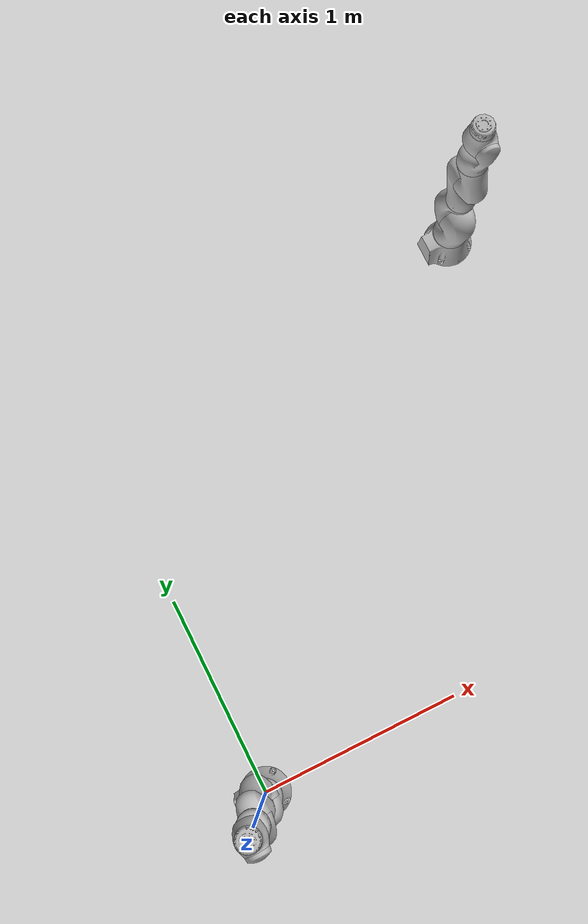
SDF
<sdf version='1.6'>
<world name='default'>
  <model name='lbr_iiwa'>
    <link name='lbr_iiwa_link_0'>
      <pose frame=''>0 0 0 0 -0 0</pose>
      <inertial>
        <pose frame=''>-0.1 0 0.07 0 -0 0</pose>
        <mass>0</mass>
        <inertia>
          <ixx>0.05</ixx>
          <ixy>0</ixy>
          <ixz>0</ixz>
          <iyy>0.06</iyy>
          <iyz>0</iyz>
          <izz>0.03</izz>
        </inertia>
      </inertial>
      <collision name='lbr_iiwa_link_0_collision'>
        <pose frame=''>0 0 0 0 -0 0</pose>
        <geometry>
          <mesh>
            <scale>1 1 1</scale>
            <uri>meshes/coarse/link_0.stl</uri>
          </mesh>
        </geometry>
      </collision>
      <visual name='lbr_iiwa_link_0_visual'>
        <pose frame=''>0 0 0 0 -0 0</pose>
        <geometry>
          <mesh>
            <scale>1 1 1</scale>
            <uri>meshes/link_0.stl</uri>
          </mesh>
        </geometry>
      </visual>
    </link>
    <link name='lbr_iiwa_link_1'>
      <pose frame=''>0 0 0.1575 0 -0 0</pose>
      <inertial>
        <pose frame=''>0 -0.03 0.12 0 -0 0</pose>
        <mass>4</mass>
        <inertia>
          <ixx>0.1</ixx>
          <ixy>0</ixy>
          <ixz>0</ixz>
          <iyy>0.09</iyy>
          <iyz>0</iyz>
          <izz>0.02</izz>
        </inertia>
      </inertial>
      <collision name='lbr_iiwa_link_1_collision'>
        <pose frame=''>0 0 0 0 -0 0</pose>
        <geometry>
          <mesh>
            <scale>1 1 1</scale>
            <uri>meshes/coarse/link_1.stl</uri>
          </mesh>
        </geometry>
      </collision>
      <visual name='lbr_iiwa_link_1_visual'>
        <pose frame=''>0 0 0 0 -0 0</pose>
        <geometry>
          <mesh>
            <scale>1 1 1</scale>
            <uri>meshes/link_1.stl</uri>
          </mesh>
        </geometry>
      </visual>
    </link>
    <joint name='lbr_iiwa_joint_1' type='revolute'>
      <child>lbr_iiwa_link_1</child>
      <parent>lbr_iiwa_link_0</parent>
      <axis>
        <xyz>0 0 1</xyz>
        <limit>
          <lower>-2.96706</lower>
          <upper>2.96706</upper>
          <effort>300</effort>
          <velocity>10</velocity>
        </limit>
        <dynamics>
          <damping>0.5</damping>
          <friction>0</friction>
          <spring_reference>0</spring_reference>
          <spring_stiffness>0</spring_stiffness>
        </dynamics>
        <use_parent_model_frame>0</use_parent_model_frame>
      </axis>
    </joint>
    <link name='lbr_iiwa_link_2'>
      <pose frame=''>0 0 0.36 1.5708 -0 -3.14159</pose>
      <inertial>
        <pose frame=''>0.0003 0.059 0.042 0 -0 0</pose>
        <mass>4</mass>
        <inertia>
          <ixx>0.05</ixx>
          <ixy>0</ixy>
          <ixz>0</ixz>
          <iyy>0.018</iyy>
          <iyz>0</iyz>
          <izz>0.044</izz>
        </inertia>
      </inertial>
      <collision name='lbr_iiwa_link_2_collision'>
        <pose frame=''>0 0 0 0 -0 0</pose>
        <geometry>
          <mesh>
            <scale>1 1 1</scale>
            <uri>meshes/coarse/link_2.stl</uri>
          </mesh>
        </geometry>
      </collision>
      <visual name='lbr_iiwa_link_2_visual'>
        <pose frame=''>0 0 0 0 -0 0</pose>
        <geometry>
          <mesh>
            <scale>1 1 1</scale>
            <uri>meshes/link_2.stl</uri>
          </mesh>
        </geometry>
      </visual>
    </link>
    <joint name='lbr_iiwa_joint_2' type='revolute'>
      <child>lbr_iiwa_link_2</child>
      <parent>lbr_iiwa_link_1</parent>
      <axis>
        <xyz>0 0 1</xyz>
        <limit>
          <lower>-2.0944</lower>
          <upper>2.0944</upper>
          <effort>300</effort>
          <velocity>10</velocity>
        </limit>
        <dynamics>
          <damping>0.5</damping>
          <friction>0</friction>
          <spring_reference>0</spring_reference>
          <spring_stiffness>0</spring_stiffness>
        </dynamics>
        <use_parent_model_frame>0</use_parent_model_frame>
      </axis>
    </joint>
    <link name='lbr_iiwa_link_3'>
      <pose frame=''>0 -0 0.5645 0 0 0</pose>
      <inertial>
        <pose frame=''>0 0.03 0.13 0 -0 0</pose>
        <mass>3</mass>
        <inertia>
          <ixx>0.08</ixx>
          <ixy>0</ixy>
          <ixz>0</ixz>
          <iyy>0.075</iyy>
          <iyz>0</iyz>
          <izz>0.01</izz>
        </inertia>
      </inertial>
      <collision name='lbr_iiwa_link_3_collision'>
        <pose frame=''>0 0 0 0 -0 0</pose>
        <geometry>
          <mesh>
            <scale>1 1 1</scale>
            <uri>meshes/coarse/link_3.stl</uri>
          </mesh>
        </geometry>
      </collision>
      <visual name='lbr_iiwa_link_3_visual'>
        <pose frame=''>0 0 0 0 -0 0</pose>
        <geometry>
          <mesh>
            <scale>1 1 1</scale>
            <uri>meshes/link_3.stl</uri>
          </mesh>
        </geometry>
      </visual>
    </link>
    <joint name='lbr_iiwa_joint_3' type='revolute'>
      <child>lbr_iiwa_link_3</child>
      <parent>lbr_iiwa_link_2</parent>
      <axis>
        <xyz>0 0 1</xyz>
        <limit>
          <lower>-2.96706</lower>
          <upper>2.96706</upper>
          <effort>300</effort>
          <velocity>10</velocity>
        </limit>
        <dynamics>
          <damping>0.5</damping>
          <friction>0</friction>
          <spring_reference>0</spring_reference>
          <spring_stiffness>0</spring_stiffness>
        </dynamics>
        <use_parent_model_frame>0</use_parent_model_frame>
      </axis>
    </joint>
    <link name='lbr_iiwa_link_4'>
      <pose frame=''>0 -0 0.78 1.5708 0 0</pose>
      <inertial>
        <pose frame=''>0 0.067 0.034 0 -0 0</pose>
        <mass>2.7</mass>
        <inertia>
          <ixx>0.03</ixx>
          <ixy>0</ixy>
          <ixz>0</ixz>
          <iyy>0.01</iyy>
          <iyz>0</iyz>
          <izz>0.029</izz>
        </inertia>
      </inertial>
      <collision name='lbr_iiwa_link_4_collision'>
        <pose frame=''>0 0 0 0 -0 0</pose>
        <geometry>
          <mesh>
            <scale>1 1 1</scale>
            <uri>meshes/coarse/link_4.stl</uri>
          </mesh>
        </geometry>
      </collision>
      <visual name='lbr_iiwa_link_4_visual'>
        <pose frame=''>0 0 0 0 -0 0</pose>
        <geometry>
          <mesh>
            <scale>1 1 1</scale>
            <uri>meshes/link_4.stl</uri>
          </mesh>
        </geometry>
      </visual>
    </link>
    <joint name='lbr_iiwa_joint_4' type='revolute'>
      <child>lbr_iiwa_link_4</child>
      <parent>lbr_iiwa_link_3</parent>
      <axis>
        <xyz>0 0 1</xyz>
        <limit>
          <lower>-2.0944</lower>
          <upper>2.0944</upper>
          <effort>300</effort>
          <velocity>10</velocity>
        </limit>
        <dynamics>
          <damping>0.5</damping>
          <friction>0</friction>
          <spring_reference>0</spring_reference>
          <spring_stiffness>0</spring_stiffness>
        </dynamics>
        <use_parent_model_frame>0</use_parent_model_frame>
      </axis>
    </joint>
    <link name='lbr_iiwa_link_5'>
      <pose frame=''>0 -0 0.9645 0 -0 -3.14159</pose>
      <inertial>
        <pose frame=''>0.0001 0.021 0.076 0 -0 0</pose>
        <mass>1.7</mass>
        <inertia>
          <ixx>0.02</ixx>
          <ixy>0</ixy>
          <ixz>0</ixz>
          <iyy>0.018</iyy>
          <iyz>0</iyz>
          <izz>0.005</izz>
        </inertia>
      </inertial>
      <collision name='lbr_iiwa_link_5_collision'>
        <pose frame=''>0 0 0 0 -0 0</pose>
        <geometry>
          <mesh>
            <scale>1 1 1</scale>
            <uri>meshes/coarse/link_5.stl</uri>
          </mesh>
        </geometry>
      </collision>
      <visual name='lbr_iiwa_link_5_visual'>
        <pose frame=''>0 0 0 0 -0 0</pose>
        <geometry>
          <mesh>
            <scale>1 1 1</scale>
            <uri>meshes/link_5.stl</uri>
          </mesh>
        </geometry>
      </visual>
    </link>
    <joint name='lbr_iiwa_joint_5' type='revolute'>
      <child>lbr_iiwa_link_5</child>
      <parent>lbr_iiwa_link_4</parent>
      <axis>
        <xyz>0 0 1</xyz>
        <limit>
          <lower>-2.96706</lower>
          <upper>2.96706</upper>
          <effort>300</effort>
          <velocity>10</velocity>
        </limit>
        <dynamics>
          <damping>0.5</damping>
          <friction>0</friction>
          <spring_reference>0</spring_reference>
          <spring_stiffness>0</spring_stiffness>
        </dynamics>
        <use_parent_model_frame>0</use_parent_model_frame>
      </axis>
    </joint>
    <link name='lbr_iiwa_link_6'>
      <pose frame=''>0 0 1.18 1.5708 -0 -3.14159</pose>
      <inertial>
        <pose frame=''>0 0.0006 0.0004 0 -0 0</pose>
        <mass>1.8</mass>
        <inertia>
          <ixx>0.005</ixx>
          <ixy>0</ixy>
          <ixz>0</ixz>
          <iyy>0.0036</iyy>
          <iyz>0</iyz>
          <izz>0.0047</izz>
        </inertia>
      </inertial>
      <collision name='lbr_iiwa_link_6_collision'>
        <pose frame=''>0 0 0 0 -0 0</pose>
        <geometry>
          <mesh>
            <scale>1 1 1</scale>
            <uri>meshes/coarse/link_6.stl</uri>
          </mesh>
        </geometry>
      </collision>
      <visual name='lbr_iiwa_link_6_visual'>
        <pose frame=''>0 0 0 0 -0 0</pose>
        <geometry>
          <mesh>
            <scale>1 1 1</scale>
            <uri>meshes/link_6.stl</uri>
          </mesh>
        </geometry>
      </visual>
    </link>
    <joint name='lbr_iiwa_joint_6' type='revolute'>
      <child>lbr_iiwa_link_6</child>
      <parent>lbr_iiwa_link_5</parent>
      <axis>
        <xyz>0 0 1</xyz>
        <limit>
          <lower>-2.0944</lower>
          <upper>2.0944</upper>
          <effort>300</effort>
          <velocity>10</velocity>
        </limit>
        <dynamics>
          <damping>0.5</damping>
          <friction>0</friction>
          <spring_reference>0</spring_reference>
          <spring_stiffness>0</spring_stiffness>
        </dynamics>
        <use_parent_model_frame>0</use_parent_model_frame>
      </axis>
    </joint>
    <link name='lbr_iiwa_link_7'>
      <pose frame=''>0 0 1.261 0 0 0</pose>
      <inertial>
        <pose frame=''>0 0 0.02 0 -0 0</pose>
        <mass>0.3</mass>
        <inertia>
          <ixx>0.001</ixx>
          <ixy>0</ixy>
          <ixz>0</ixz>
          <iyy>0.001</iyy>
          <iyz>0</iyz>
          <izz>0.001</izz>
        </inertia>
      </inertial>
      <collision name='lbr_iiwa_link_7_collision'>
        <pose frame=''>0 0 0 0 -0 0</pose>
        <geometry>
          <mesh>
            <scale>1 1 1</scale>
            <uri>meshes/coarse/link_7.stl</uri>
          </mesh>
        </geometry>
      </collision>
      <visual name='lbr_iiwa_link_7_visual'>
        <pose frame=''>0 0 0 0 -0 0</pose>
        <geometry>
          <mesh>
            <scale>1 1 1</scale>
            <uri>meshes/link_7.stl</uri>
          </mesh>
        </geometry>
      </visual>
    </link>
    <joint name='lbr_iiwa_joint_7' type='revolute'>
      <child>lbr_iiwa_link_7</child>
      <parent>lbr_iiwa_link_6</parent>
      <axis>
        <xyz>0 0 1</xyz>
        <limit>
          <lower>-3.05433</lower>
          <upper>3.05433</upper>
          <effort>300</effort>
          <velocity>10</velocity>
        </limit>
        <dynamics>
          <damping>0.5</damping>
          <friction>0</friction>
          <spring_reference>0</spring_reference>
          <spring_stiffness>0</spring_stiffness>
        </dynamics>
        <use_parent_model_frame>0</use_parent_model_frame>
      </axis>
    </joint>
  </model>

  <model name='lbr_iiwa'>
    <pose frame=''>2 2 0 0 -0 0</pose>
    <link name='lbr_iiwa_link_0'>
      <pose frame=''>0 0 0 0 -0 0</pose>
      <inertial>
        <pose frame=''>-0.1 0 0.07 0 -0 0</pose>
        <mass>0</mass>
        <inertia>
          <ixx>0.05</ixx>
          <ixy>0</ixy>
          <ixz>0</ixz>
          <iyy>0.06</iyy>
          <iyz>0</iyz>
          <izz>0.03</izz>
        </inertia>
      </inertial>
      <collision name='lbr_iiwa_link_0_collision'>
        <pose frame=''>0 0 0 0 -0 0</pose>
        <geometry>
          <mesh>
            <scale>1 1 1</scale>
            <uri>meshes/coarse/link_0.stl</uri>
          </mesh>
        </geometry>
      </collision>
      <visual name='lbr_iiwa_link_0_visual'>
        <pose frame=''>0 0 0 0 -0 0</pose>
        <geometry>
          <mesh>
            <scale>1 1 1</scale>
            <uri>meshes/link_0.stl</uri>
          </mesh>
        </geometry>
      </visual>
    </link>
    <link name='lbr_iiwa_link_1'>
      <pose frame=''>0 0 0.1575 0 -0 0</pose>
      <inertial>
        <pose frame=''>0 -0.03 0.12 0 -0 0</pose>
        <mass>4</mass>
        <inertia>
          <ixx>0.1</ixx>
          <ixy>0</ixy>
          <ixz>0</ixz>
          <iyy>0.09</iyy>
          <iyz>0</iyz>
          <izz>0.02</izz>
        </inertia>
      </inertial>
      <collision name='lbr_iiwa_link_1_collision'>
        <pose frame=''>0 0 0 0 -0 0</pose>
        <geometry>
          <mesh>
            <scale>1 1 1</scale>
            <uri>meshes/coarse/link_1.stl</uri>
          </mesh>
        </geometry>
      </collision>
      <visual name='lbr_iiwa_link_1_visual'>
        <pose frame=''>0 0 0 0 -0 0</pose>
        <geometry>
          <mesh>
            <scale>1 1 1</scale>
            <uri>meshes/link_1.stl</uri>
          </mesh>
        </geometry>
      </visual>
    </link>
    <joint name='lbr_iiwa_joint_1' type='revolute'>
      <child>lbr_iiwa_link_1</child>
      <parent>lbr_iiwa_link_0</parent>
      <axis>
        <xyz>0 0 1</xyz>
        <limit>
          <lower>-2.96706</lower>
          <upper>2.96706</upper>
          <effort>300</effort>
          <velocity>10</velocity>
        </limit>
        <dynamics>
          <damping>0.5</damping>
          <friction>0</friction>
          <spring_reference>0</spring_reference>
          <spring_stiffness>0</spring_stiffness>
        </dynamics>
        <use_parent_model_frame>0</use_parent_model_frame>
      </axis>
    </joint>
    <link name='lbr_iiwa_link_2'>
      <pose frame=''>0 0 0.36 1.5708 -0 -3.14159</pose>
      <inertial>
        <pose frame=''>0.0003 0.059 0.042 0 -0 0</pose>
        <mass>4</mass>
        <inertia>
          <ixx>0.05</ixx>
          <ixy>0</ixy>
          <ixz>0</ixz>
          <iyy>0.018</iyy>
          <iyz>0</iyz>
          <izz>0.044</izz>
        </inertia>
      </inertial>
      <collision name='lbr_iiwa_link_2_collision'>
        <pose frame=''>0 0 0 0 -0 0</pose>
        <geometry>
          <mesh>
            <scale>1 1 1</scale>
            <uri>meshes/coarse/link_2.stl</uri>
          </mesh>
        </geometry>
      </collision>
      <visual name='lbr_iiwa_link_2_visual'>
        <pose frame=''>0 0 0 0 -0 0</pose>
        <geometry>
          <mesh>
            <scale>1 1 1</scale>
            <uri>meshes/link_2.stl</uri>
          </mesh>
        </geometry>
      </visual>
    </link>
    <joint name='lbr_iiwa_joint_2' type='revolute'>
      <child>lbr_iiwa_link_2</child>
      <parent>lbr_iiwa_link_1</parent>
      <axis>
        <xyz>0 0 1</xyz>
        <limit>
          <lower>-2.0944</lower>
          <upper>2.0944</upper>
          <effort>300</effort>
          <velocity>10</velocity>
        </limit>
        <dynamics>
          <damping>0.5</damping>
          <friction>0</friction>
          <spring_reference>0</spring_reference>
          <spring_stiffness>0</spring_stiffness>
        </dynamics>
        <use_parent_model_frame>0</use_parent_model_frame>
      </axis>
    </joint>
    <link name='lbr_iiwa_link_3'>
      <pose frame=''>0 -0 0.5645 0 0 0</pose>
      <inertial>
        <pose frame=''>0 0.03 0.13 0 -0 0</pose>
        <mass>3</mass>
        <inertia>
          <ixx>0.08</ixx>
          <ixy>0</ixy>
          <ixz>0</ixz>
          <iyy>0.075</iyy>
          <iyz>0</iyz>
          <izz>0.01</izz>
        </inertia>
      </inertial>
      <collision name='lbr_iiwa_link_3_collision'>
        <pose frame=''>0 0 0 0 -0 0</pose>
        <geometry>
          <mesh>
            <scale>1 1 1</scale>
            <uri>meshes/coarse/link_3.stl</uri>
          </mesh>
        </geometry>
      </collision>
      <visual name='lbr_iiwa_link_3_visual'>
        <pose frame=''>0 0 0 0 -0 0</pose>
        <geometry>
          <mesh>
            <scale>1 1 1</scale>
            <uri>meshes/link_3.stl</uri>
          </mesh>
        </geometry>
      </visual>
    </link>
    <joint name='lbr_iiwa_joint_3' type='revolute'>
      <child>lbr_iiwa_link_3</child>
      <parent>lbr_iiwa_link_2</parent>
      <axis>
        <xyz>0 0 1</xyz>
        <limit>
          <lower>-2.96706</lower>
          <upper>2.96706</upper>
          <effort>300</effort>
          <velocity>10</velocity>
        </limit>
        <dynamics>
          <damping>0.5</damping>
          <friction>0</friction>
          <spring_reference>0</spring_reference>
          <spring_stiffness>0</spring_stiffness>
        </dynamics>
        <use_parent_model_frame>0</use_parent_model_frame>
      </axis>
    </joint>
    <link name='lbr_iiwa_link_4'>
      <pose frame=''>0 -0 0.78 1.5708 0 0</pose>
      <inertial>
        <pose frame=''>0 0.067 0.034 0 -0 0</pose>
        <mass>2.7</mass>
        <inertia>
          <ixx>0.03</ixx>
          <ixy>0</ixy>
          <ixz>0</ixz>
          <iyy>0.01</iyy>
          <iyz>0</iyz>
          <izz>0.029</izz>
        </inertia>
      </inertial>
      <collision name='lbr_iiwa_link_4_collision'>
        <pose frame=''>0 0 0 0 -0 0</pose>
        <geometry>
          <mesh>
            <scale>1 1 1</scale>
            <uri>meshes/coarse/link_4.stl</uri>
          </mesh>
        </geometry>
      </collision>
      <visual name='lbr_iiwa_link_4_visual'>
        <pose frame=''>0 0 0 0 -0 0</pose>
        <geometry>
          <mesh>
            <scale>1 1 1</scale>
            <uri>meshes/link_4.stl</uri>
          </mesh>
        </geometry>
      </visual>
    </link>
    <joint name='lbr_iiwa_joint_4' type='revolute'>
      <child>lbr_iiwa_link_4</child>
      <parent>lbr_iiwa_link_3</parent>
      <axis>
        <xyz>0 0 1</xyz>
        <limit>
          <lower>-2.0944</lower>
          <upper>2.0944</upper>
          <effort>300</effort>
          <velocity>10</velocity>
        </limit>
        <dynamics>
          <damping>0.5</damping>
          <friction>0</friction>
          <spring_reference>0</spring_reference>
          <spring_stiffness>0</spring_stiffness>
        </dynamics>
        <use_parent_model_frame>0</use_parent_model_frame>
      </axis>
    </joint>
    <link name='lbr_iiwa_link_5'>
      <pose frame=''>0 -0 0.9645 0 -0 -3.14159</pose>
      <inertial>
        <pose frame=''>0.0001 0.021 0.076 0 -0 0</pose>
        <mass>1.7</mass>
        <inertia>
          <ixx>0.02</ixx>
          <ixy>0</ixy>
          <ixz>0</ixz>
          <iyy>0.018</iyy>
          <iyz>0</iyz>
          <izz>0.005</izz>
        </inertia>
      </inertial>
      <collision name='lbr_iiwa_link_5_collision'>
        <pose frame=''>0 0 0 0 -0 0</pose>
        <geometry>
          <mesh>
            <scale>1 1 1</scale>
            <uri>meshes/coarse/link_5.stl</uri>
          </mesh>
        </geometry>
      </collision>
      <visual name='lbr_iiwa_link_5_visual'>
        <pose frame=''>0 0 0 0 -0 0</pose>
        <geometry>
          <mesh>
            <scale>1 1 1</scale>
            <uri>meshes/link_5.stl</uri>
          </mesh>
        </geometry>
      </visual>
    </link>
    <joint name='lbr_iiwa_joint_5' type='revolute'>
      <child>lbr_iiwa_link_5</child>
      <parent>lbr_iiwa_link_4</parent>
      <axis>
        <xyz>0 0 1</xyz>
        <limit>
          <lower>-2.96706</lower>
          <upper>2.96706</upper>
          <effort>300</effort>
          <velocity>10</velocity>
        </limit>
        <dynamics>
          <damping>0.5</damping>
          <friction>0</friction>
          <spring_reference>0</spring_reference>
          <spring_stiffness>0</spring_stiffness>
        </dynamics>
        <use_parent_model_frame>0</use_parent_model_frame>
      </axis>
    </joint>
    <link name='lbr_iiwa_link_6'>
      <pose frame=''>0 0 1.18 1.5708 -0 -3.14159</pose>
      <inertial>
        <pose frame=''>0 0.0006 0.0004 0 -0 0</pose>
        <mass>1.8</mass>
        <inertia>
          <ixx>0.005</ixx>
          <ixy>0</ixy>
          <ixz>0</ixz>
          <iyy>0.0036</iyy>
          <iyz>0</iyz>
          <izz>0.0047</izz>
        </inertia>
      </inertial>
      <collision name='lbr_iiwa_link_6_collision'>
        <pose frame=''>0 0 0 0 -0 0</pose>
        <geometry>
          <mesh>
            <scale>1 1 1</scale>
            <uri>meshes/coarse/link_6.stl</uri>
          </mesh>
        </geometry>
      </collision>
      <visual name='lbr_iiwa_link_6_visual'>
        <pose frame=''>0 0 0 0 -0 0</pose>
        <geometry>
          <mesh>
            <scale>1 1 1</scale>
            <uri>meshes/link_6.stl</uri>
          </mesh>
        </geometry>
      </visual>
    </link>
    <joint name='lbr_iiwa_joint_6' type='revolute'>
      <child>lbr_iiwa_link_6</child>
      <parent>lbr_iiwa_link_5</parent>
      <axis>
        <xyz>0 0 1</xyz>
        <limit>
          <lower>-2.0944</lower>
          <upper>2.0944</upper>
          <effort>300</effort>
          <velocity>10</velocity>
        </limit>
        <dynamics>
          <damping>0.5</damping>
          <friction>0</friction>
          <spring_reference>0</spring_reference>
          <spring_stiffness>0</spring_stiffness>
        </dynamics>
        <use_parent_model_frame>0</use_parent_model_frame>
      </axis>
    </joint>
    <link name='lbr_iiwa_link_7'>
      <pose frame=''>0 0 1.261 0 0 0</pose>
      <inertial>
        <pose frame=''>0 0 0.02 0 -0 0</pose>
        <mass>0.3</mass>
        <inertia>
          <ixx>0.001</ixx>
          <ixy>0</ixy>
          <ixz>0</ixz>
          <iyy>0.001</iyy>
          <iyz>0</iyz>
          <izz>0.001</izz>
        </inertia>
      </inertial>
      <collision name='lbr_iiwa_link_7_collision'>
        <pose frame=''>0 0 0 0 -0 0</pose>
        <geometry>
          <mesh>
            <scale>1 1 1</scale>
            <uri>meshes/coarse/link_7.stl</uri>
          </mesh>
        </geometry>
      </collision>
      <visual name='lbr_iiwa_link_7_visual'>
        <pose frame=''>0 0 0 0 -0 0</pose>
        <geometry>
          <mesh>
            <scale>1 1 1</scale>
            <uri>meshes/link_7.stl</uri>
          </mesh>
        </geometry>
      </visual>
    </link>
    <joint name='lbr_iiwa_joint_7' type='revolute'>
      <child>lbr_iiwa_link_7</child>
      <parent>lbr_iiwa_link_6</parent>
      <axis>
        <xyz>0 0 1</xyz>
        <limit>
          <lower>-3.05433</lower>
          <upper>3.05433</upper>
          <effort>300</effort>
          <velocity>10</velocity>
        </limit>
        <dynamics>
          <damping>0.5</damping>
          <friction>0</friction>
          <spring_reference>0</spring_reference>
          <spring_stiffness>0</spring_stiffness>
        </dynamics>
        <use_parent_model_frame>0</use_parent_model_frame>
      </axis>
    </joint>
  </model>
 </world>
</sdf>
